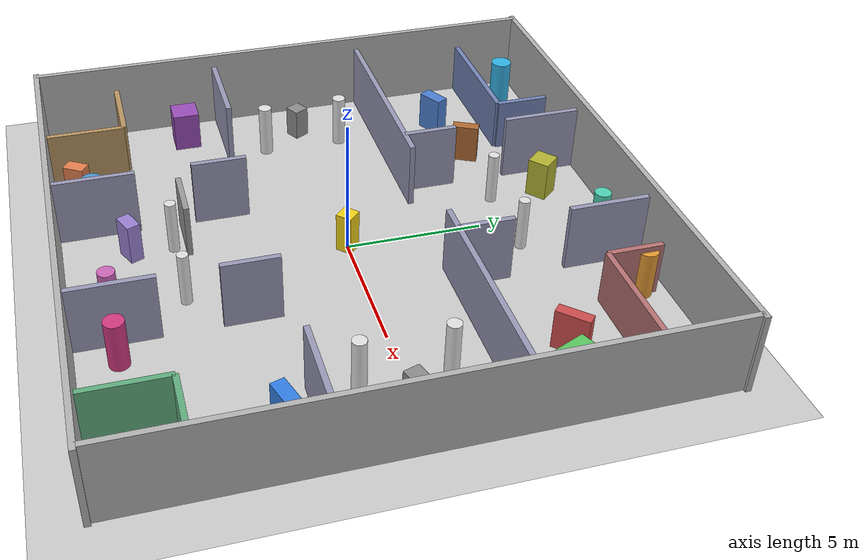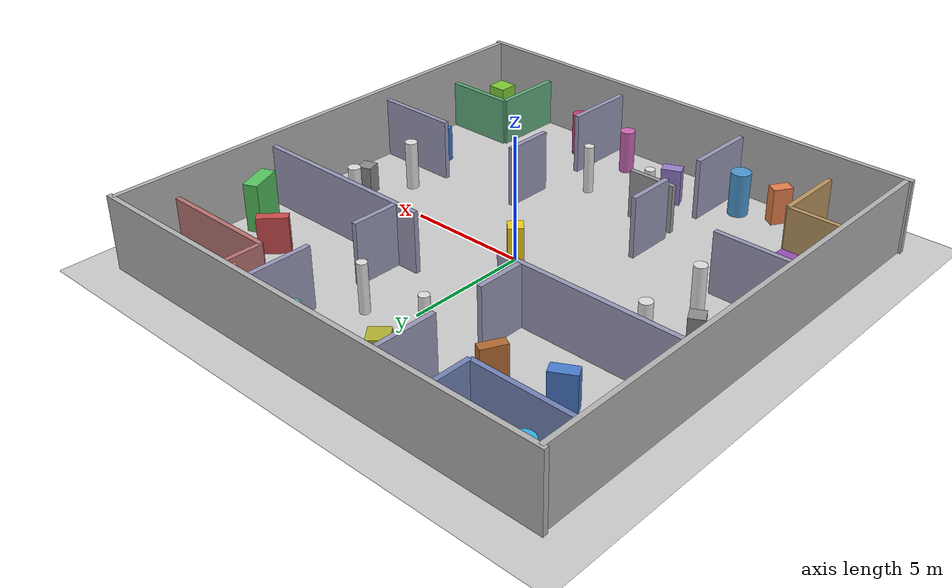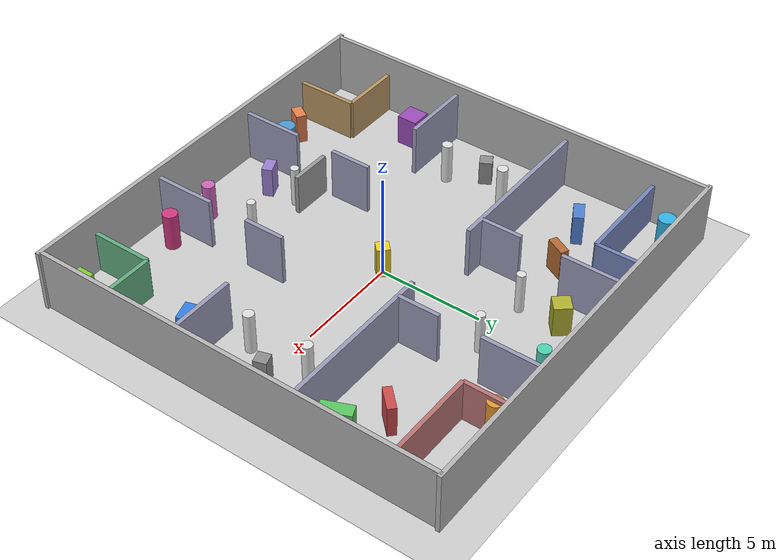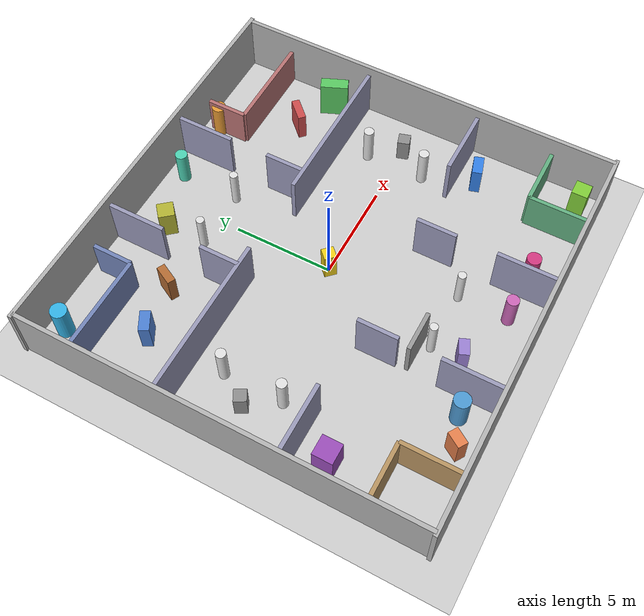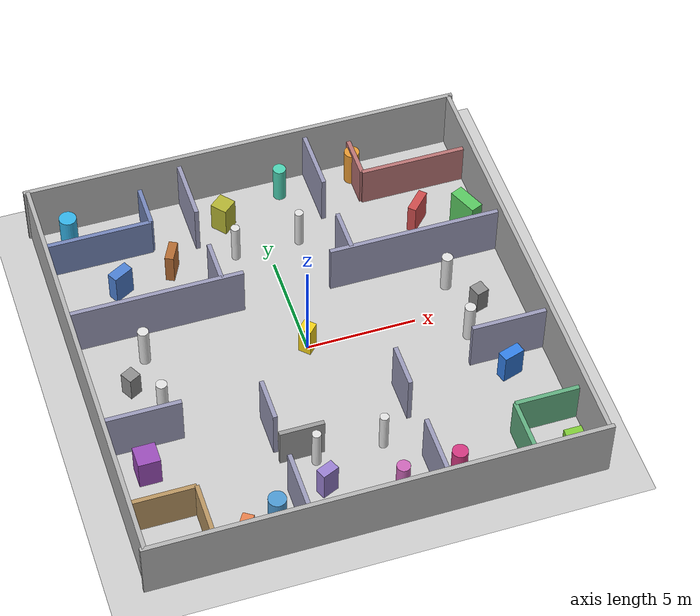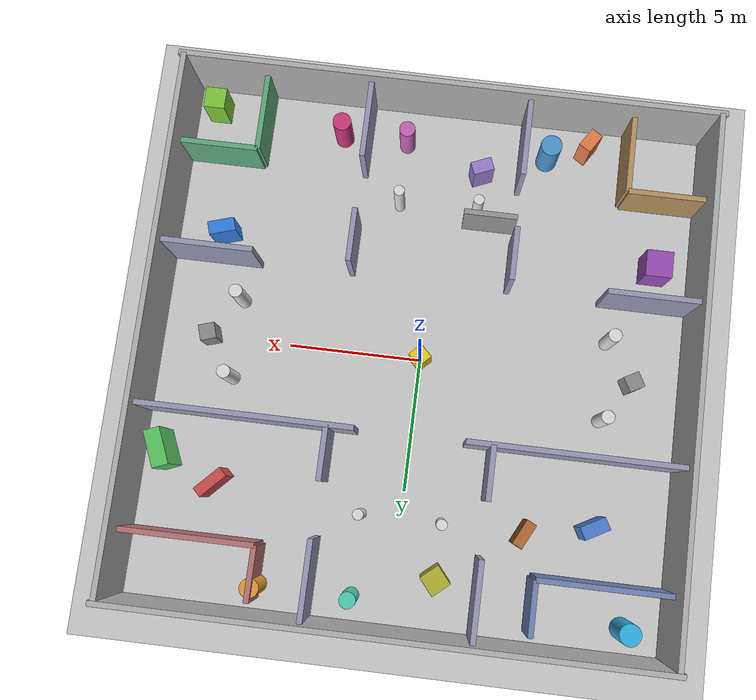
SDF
<?xml version="1.0" ?>
<sdf version="1.8">
  <world name="multi_robot_world">

    <physics name="1ms" type="ignore">
      <max_step_size>0.001</max_step_size>
      <real_time_factor>1.0</real_time_factor>
    </physics>

    <plugin filename="gz-sim-physics-system"          name="gz::sim::systems::Physics"/>
    <plugin filename="gz-sim-user-commands-system"    name="gz::sim::systems::UserCommands"/>
    <plugin filename="gz-sim-scene-broadcaster-system" name="gz::sim::systems::SceneBroadcaster"/>
    <plugin filename="gz-sim-sensors-system"          name="gz::sim::systems::Sensors">
      <render_engine>ogre2</render_engine>
    </plugin>

    <light type="directional" name="sun">
      <cast_shadows>true</cast_shadows>
      <pose>0 0 10 0 0 0</pose>
      <diffuse>0.8 0.8 0.8 1</diffuse>
      <specular>0.2 0.2 0.2 1</specular>
      <attenuation>
        <range>1000</range><constant>0.9</constant>
        <linear>0.01</linear><quadratic>0.001</quadratic>
      </attenuation>
      <direction>-0.5 0.1 -0.9</direction>
    </light>

    <model name="ground_plane">
      <static>true</static>
      <link name="link">
        <collision name="collision">
          <geometry><plane><normal>0 0 1</normal><size>100 100</size></plane></geometry>
        </collision>
        <visual name="visual">
          <geometry><plane><normal>0 0 1</normal><size>100 100</size></plane></geometry>
          <material><ambient>0.8 0.8 0.8 1</ambient><diffuse>0.8 0.8 0.8 1</diffuse></material>
        </visual>
      </link>
    </model>

    <model name="wall_north">
      <pose>0 10 1.5 0 0 0</pose><static>true</static>
      <link name="link">
        <collision name="collision"><geometry><box><size>20.4 0.2 3</size></box></geometry></collision>
        <visual name="visual"><geometry><box><size>20.4 0.2 3</size></box></geometry>
          <material><ambient>0.7 0.7 0.7 1</ambient><diffuse>0.7 0.7 0.7 1</diffuse></material></visual>
      </link>
    </model>
    <model name="wall_south">
      <pose>0 -10 1.5 0 0 0</pose><static>true</static>
      <link name="link">
        <collision name="collision"><geometry><box><size>20.4 0.2 3</size></box></geometry></collision>
        <visual name="visual"><geometry><box><size>20.4 0.2 3</size></box></geometry>
          <material><ambient>0.7 0.7 0.7 1</ambient><diffuse>0.7 0.7 0.7 1</diffuse></material></visual>
      </link>
    </model>
    <model name="wall_east">
      <pose>10 0 1.5 0 0 0</pose><static>true</static>
      <link name="link">
        <collision name="collision"><geometry><box><size>0.2 20 3</size></box></geometry></collision>
        <visual name="visual"><geometry><box><size>0.2 20 3</size></box></geometry>
          <material><ambient>0.7 0.7 0.7 1</ambient><diffuse>0.7 0.7 0.7 1</diffuse></material></visual>
      </link>
    </model>
    <model name="wall_west">
      <pose>-10 0 1.5 0 0 0</pose><static>true</static>
      <link name="link">
        <collision name="collision"><geometry><box><size>0.2 20 3</size></box></geometry></collision>
        <visual name="visual"><geometry><box><size>0.2 20 3</size></box></geometry>
          <material><ambient>0.7 0.7 0.7 1</ambient><diffuse>0.7 0.7 0.7 1</diffuse></material></visual>
      </link>
    </model>

    <model name="wall_h_y3_left">
      <pose>-6 3 1.25 0 0 0</pose><static>true</static>
      <link name="link">
        <collision name="collision"><geometry><box><size>8 0.2 2.5</size></box></geometry></collision>
        <visual name="visual"><geometry><box><size>8 0.2 2.5</size></box></geometry>
          <material><ambient>0.6 0.6 0.72 1</ambient><diffuse>0.6 0.6 0.72 1</diffuse></material></visual>
      </link>
    </model>
    <model name="wall_h_y3_right">
      <pose>6 3 1.25 0 0 0</pose><static>true</static>
      <link name="link">
        <collision name="collision"><geometry><box><size>8 0.2 2.5</size></box></geometry></collision>
        <visual name="visual"><geometry><box><size>8 0.2 2.5</size></box></geometry>
          <material><ambient>0.6 0.6 0.72 1</ambient><diffuse>0.6 0.6 0.72 1</diffuse></material></visual>
      </link>
    </model>

<model name="wall_h_ym3_left">
  <pose>-8.25 -3 1.25 0 0 0</pose><static>true</static>
  <link name="link">
    <collision name="collision"><geometry><box><size>3.5 0.2 2.5</size></box></geometry></collision>
    <visual name="visual"><geometry><box><size>3.5 0.2 2.5</size></box></geometry>
      <material><ambient>0.6 0.6 0.72 1</ambient><diffuse>0.6 0.6 0.72 1</diffuse></material></visual>
  </link>
</model>

<model name="wall_h_ym3_right">
  <pose>8.25 -3 1.25 0 0 0</pose><static>true</static>
  <link name="link">
    <collision name="collision"><geometry><box><size>3.5 0.2 2.5</size></box></geometry></collision>
    <visual name="visual"><geometry><box><size>3.5 0.2 2.5</size></box></geometry>
      <material><ambient>0.6 0.6 0.72 1</ambient><diffuse>0.6 0.6 0.72 1</diffuse></material></visual>
  </link>
</model>

    <model name="wall_v_xm3_n_stub_s">
      <pose>-3 4 1.25 0 0 0</pose><static>true</static>
      <link name="link">
        <collision name="collision"><geometry><box><size>0.2 2 2.5</size></box></geometry></collision>
        <visual name="visual"><geometry><box><size>0.2 2 2.5</size></box></geometry>
          <material><ambient>0.6 0.6 0.72 1</ambient><diffuse>0.6 0.6 0.72 1</diffuse></material></visual>
      </link>
    </model>
    <model name="wall_v_xm3_n_stub_n">
      <pose>-3 8.5 1.25 0 0 0</pose><static>true</static>
      <link name="link">
        <collision name="collision"><geometry><box><size>0.2 3 2.5</size></box></geometry></collision>
        <visual name="visual"><geometry><box><size>0.2 3 2.5</size></box></geometry>
          <material><ambient>0.6 0.6 0.72 1</ambient><diffuse>0.6 0.6 0.72 1</diffuse></material></visual>
      </link>
    </model>
    <model name="wall_v_x3_n_stub_s">
      <pose>3 4 1.25 0 0 0</pose><static>true</static>
      <link name="link">
        <collision name="collision"><geometry><box><size>0.2 2 2.5</size></box></geometry></collision>
        <visual name="visual"><geometry><box><size>0.2 2 2.5</size></box></geometry>
          <material><ambient>0.6 0.6 0.72 1</ambient><diffuse>0.6 0.6 0.72 1</diffuse></material></visual>
      </link>
    </model>
    <model name="wall_v_x3_n_stub_n">
      <pose>3 8.5 1.25 0 0 0</pose><static>true</static>
      <link name="link">
        <collision name="collision"><geometry><box><size>0.2 3 2.5</size></box></geometry></collision>
        <visual name="visual"><geometry><box><size>0.2 3 2.5</size></box></geometry>
          <material><ambient>0.6 0.6 0.72 1</ambient><diffuse>0.6 0.6 0.72 1</diffuse></material></visual>
      </link>
    </model>
    <model name="wall_v_xm3_s_stub_s">
      <pose>-3 -8.5 1.25 0 0 0</pose><static>true</static>
      <link name="link">
        <collision name="collision"><geometry><box><size>0.2 3 2.5</size></box></geometry></collision>
        <visual name="visual"><geometry><box><size>0.2 3 2.5</size></box></geometry>
          <material><ambient>0.6 0.6 0.72 1</ambient><diffuse>0.6 0.6 0.72 1</diffuse></material></visual>
      </link>
    </model>
    <model name="wall_v_xm3_s_stub_n">
      <pose>-3 -4 1.25 0 0 0</pose><static>true</static>
      <link name="link">
        <collision name="collision"><geometry><box><size>0.2 2 2.5</size></box></geometry></collision>
        <visual name="visual"><geometry><box><size>0.2 2 2.5</size></box></geometry>
          <material><ambient>0.6 0.6 0.72 1</ambient><diffuse>0.6 0.6 0.72 1</diffuse></material></visual>
      </link>
    </model>
    <model name="wall_v_x3_s_stub_s">
      <pose>3 -8.5 1.25 0 0 0</pose><static>true</static>
      <link name="link">
        <collision name="collision"><geometry><box><size>0.2 3 2.5</size></box></geometry></collision>
        <visual name="visual"><geometry><box><size>0.2 3 2.5</size></box></geometry>
          <material><ambient>0.6 0.6 0.72 1</ambient><diffuse>0.6 0.6 0.72 1</diffuse></material></visual>
      </link>
    </model>
    <model name="wall_v_x3_s_stub_n">
      <pose>3 -4 1.25 0 0 0</pose><static>true</static>
      <link name="link">
        <collision name="collision"><geometry><box><size>0.2 2 2.5</size></box></geometry></collision>
        <visual name="visual"><geometry><box><size>0.2 2 2.5</size></box></geometry>
          <material><ambient>0.6 0.6 0.72 1</ambient><diffuse>0.6 0.6 0.72 1</diffuse></material></visual>
      </link>
    </model>

    <model name="wall_nw_alcove_h">
      <pose>-7.5 7.5 1.0 0 0 0</pose><static>true</static>
      <link name="link">
        <collision name="collision"><geometry><box><size>5 0.2 2.0</size></box></geometry></collision>
        <visual name="visual"><geometry><box><size>5 0.2 2.0</size></box></geometry>
          <material><ambient>0.45 0.52 0.72 1</ambient><diffuse>0.45 0.52 0.72 1</diffuse></material></visual>
      </link>
    </model>
    <model name="wall_nw_alcove_v">
      <pose>-5 8.5 1.0 0 0 0</pose><static>true</static>
      <link name="link">
        <collision name="collision"><geometry><box><size>0.2 2.0 2.0</size></box></geometry></collision>
        <visual name="visual"><geometry><box><size>0.2 2.0 2.0</size></box></geometry>
          <material><ambient>0.45 0.52 0.72 1</ambient><diffuse>0.45 0.52 0.72 1</diffuse></material></visual>
      </link>
    </model>
    <model name="wall_ne_alcove_h">
      <pose>7.5 7.5 1.0 0 0 0</pose><static>true</static>
      <link name="link">
        <collision name="collision"><geometry><box><size>5 0.2 2.0</size></box></geometry></collision>
        <visual name="visual"><geometry><box><size>5 0.2 2.0</size></box></geometry>
          <material><ambient>0.72 0.45 0.45 1</ambient><diffuse>0.72 0.45 0.45 1</diffuse></material></visual>
      </link>
    </model>
    <model name="wall_ne_alcove_v">
      <pose>5 8.5 1.0 0 0 0</pose><static>true</static>
      <link name="link">
        <collision name="collision"><geometry><box><size>0.2 2.0 2.0</size></box></geometry></collision>
        <visual name="visual"><geometry><box><size>0.2 2.0 2.0</size></box></geometry>
          <material><ambient>0.72 0.45 0.45 1</ambient><diffuse>0.72 0.45 0.45 1</diffuse></material></visual>
      </link>
    </model>
    <model name="wall_sw_niche_v">
      <pose>-7 -8.5 1.0 0 0 0</pose><static>true</static>
      <link name="link">
        <collision name="collision"><geometry><box><size>0.2 3.0 2.0</size></box></geometry></collision>
        <visual name="visual"><geometry><box><size>0.2 3.0 2.0</size></box></geometry>
          <material><ambient>0.72 0.58 0.38 1</ambient><diffuse>0.72 0.58 0.38 1</diffuse></material></visual>
      </link>
    </model>
    <model name="wall_sw_niche_h">
      <pose>-8.5 -7 1.0 0 0 0</pose><static>true</static>
      <link name="link">
        <collision name="collision"><geometry><box><size>3.0 0.2 2.0</size></box></geometry></collision>
        <visual name="visual"><geometry><box><size>3.0 0.2 2.0</size></box></geometry>
          <material><ambient>0.72 0.58 0.38 1</ambient><diffuse>0.72 0.58 0.38 1</diffuse></material></visual>
      </link>
    </model>
    <model name="wall_se_niche_v">
      <pose>7 -8.5 1.0 0 0 0</pose><static>true</static>
      <link name="link">
        <collision name="collision"><geometry><box><size>0.2 3.0 2.0</size></box></geometry></collision>
        <visual name="visual"><geometry><box><size>0.2 3.0 2.0</size></box></geometry>
          <material><ambient>0.38 0.68 0.50 1</ambient><diffuse>0.38 0.68 0.50 1</diffuse></material></visual>
      </link>
    </model>
    <model name="wall_se_niche_h">
      <pose>8.5 -7 1.0 0 0 0</pose><static>true</static>
      <link name="link">
        <collision name="collision"><geometry><box><size>3.0 0.2 2.0</size></box></geometry></collision>
        <visual name="visual"><geometry><box><size>3.0 0.2 2.0</size></box></geometry>
          <material><ambient>0.38 0.68 0.50 1</ambient><diffuse>0.38 0.68 0.50 1</diffuse></material></visual>
      </link>
    </model>
    <model name="wall_sc_niche">
      <pose>-2 -5.5 1.0 0 0 0</pose><static>true</static>
      <link name="link">
        <collision name="collision"><geometry><box><size>2.0 0.2 2.0</size></box></geometry></collision>
        <visual name="visual"><geometry><box><size>2.0 0.2 2.0</size></box></geometry>
          <material><ambient>0.6 0.6 0.6 1</ambient><diffuse>0.6 0.6 0.6 1</diffuse></material></visual>
      </link>
    </model>

    <model name="pillar_w_north">
      <pose>-7 1.5 1.0 0 0 0</pose><static>true</static>
      <link name="link">
        <collision name="collision"><geometry><cylinder><radius>0.25</radius><length>2.0</length></cylinder></geometry></collision>
        <visual name="visual"><geometry><cylinder><radius>0.25</radius><length>2.0</length></cylinder></geometry>
          <material><ambient>0.88 0.88 0.88 1</ambient><diffuse>0.88 0.88 0.88 1</diffuse></material></visual>
      </link>
    </model>
    <model name="pillar_w_south">
      <pose>-7 -1.5 1.0 0 0 0</pose><static>true</static>
      <link name="link">
        <collision name="collision"><geometry><cylinder><radius>0.25</radius><length>2.0</length></cylinder></geometry></collision>
        <visual name="visual"><geometry><cylinder><radius>0.25</radius><length>2.0</length></cylinder></geometry>
          <material><ambient>0.88 0.88 0.88 1</ambient><diffuse>0.88 0.88 0.88 1</diffuse></material></visual>
      </link>
    </model>
    <model name="pillar_e_north">
      <pose>7 1.5 1.0 0 0 0</pose><static>true</static>
      <link name="link">
        <collision name="collision"><geometry><cylinder><radius>0.25</radius><length>2.0</length></cylinder></geometry></collision>
        <visual name="visual"><geometry><cylinder><radius>0.25</radius><length>2.0</length></cylinder></geometry>
          <material><ambient>0.88 0.88 0.88 1</ambient><diffuse>0.88 0.88 0.88 1</diffuse></material></visual>
      </link>
    </model>
    <model name="pillar_e_south">
      <pose>7 -1.5 1.0 0 0 0</pose><static>true</static>
      <link name="link">
        <collision name="collision"><geometry><cylinder><radius>0.25</radius><length>2.0</length></cylinder></geometry></collision>
        <visual name="visual"><geometry><cylinder><radius>0.25</radius><length>2.0</length></cylinder></geometry>
          <material><ambient>0.88 0.88 0.88 1</ambient><diffuse>0.88 0.88 0.88 1</diffuse></material></visual>
      </link>
    </model>
    <model name="pillar_sc_west">
      <pose>-1.5 -6 1.0 0 0 0</pose><static>true</static>
      <link name="link">
        <collision name="collision"><geometry><cylinder><radius>0.2</radius><length>2.0</length></cylinder></geometry></collision>
        <visual name="visual"><geometry><cylinder><radius>0.2</radius><length>2.0</length></cylinder></geometry>
          <material><ambient>0.88 0.88 0.88 1</ambient><diffuse>0.88 0.88 0.88 1</diffuse></material></visual>
      </link>
    </model>
    <model name="pillar_sc_east">
      <pose>1.5 -6 1.0 0 0 0</pose><static>true</static>
      <link name="link">
        <collision name="collision"><geometry><cylinder><radius>0.2</radius><length>2.0</length></cylinder></geometry></collision>
        <visual name="visual"><geometry><cylinder><radius>0.2</radius><length>2.0</length></cylinder></geometry>
          <material><ambient>0.88 0.88 0.88 1</ambient><diffuse>0.88 0.88 0.88 1</diffuse></material></visual>
      </link>
    </model>
    <model name="pillar_nc_west">
      <pose>-1.5 6 1.0 0 0 0</pose><static>true</static>
      <link name="link">
        <collision name="collision"><geometry><cylinder><radius>0.2</radius><length>2.0</length></cylinder></geometry></collision>
        <visual name="visual"><geometry><cylinder><radius>0.2</radius><length>2.0</length></cylinder></geometry>
          <material><ambient>0.88 0.88 0.88 1</ambient><diffuse>0.88 0.88 0.88 1</diffuse></material></visual>
      </link>
    </model>
    <model name="pillar_nc_east">
      <pose>1.5 6 1.0 0 0 0</pose><static>true</static>
      <link name="link">
        <collision name="collision"><geometry><cylinder><radius>0.2</radius><length>2.0</length></cylinder></geometry></collision>
        <visual name="visual"><geometry><cylinder><radius>0.2</radius><length>2.0</length></cylinder></geometry>
          <material><ambient>0.88 0.88 0.88 1</ambient><diffuse>0.88 0.88 0.88 1</diffuse></material></visual>
      </link>
    </model>

    <model name="feature_junction_center">
      <pose>0 0 0.75 0 0 0.785</pose><static>true</static>
      <link name="link">
        <collision name="collision"><geometry><box><size>0.6 0.6 1.5</size></box></geometry></collision>
        <visual name="visual"><geometry><box><size>0.6 0.6 1.5</size></box></geometry>
          <material><ambient>0.95 0.82 0.1 1</ambient><diffuse>0.95 0.82 0.1 1</diffuse></material></visual>
      </link>
    </model>

    <model name="obs_nw_box1">
      <pose>-7 5.5 0.75 0 0 0.5</pose><static>true</static>
      <link name="link">
        <collision name="collision"><geometry><box><size>1.0 0.5 1.5</size></box></geometry></collision>
        <visual name="visual"><geometry><box><size>1.0 0.5 1.5</size></box></geometry>
          <material><ambient>0.3 0.5 0.82 1</ambient><diffuse>0.3 0.5 0.82 1</diffuse></material></visual>
      </link>
    </model>
    <model name="obs_nw_cyl">
      <pose>-8.5 9 0.9 0 0 0</pose><static>true</static>
      <link name="link">
        <collision name="collision"><geometry><cylinder><radius>0.4</radius><length>1.8</length></cylinder></geometry></collision>
        <visual name="visual"><geometry><cylinder><radius>0.4</radius><length>1.8</length></cylinder></geometry>
          <material><ambient>0.2 0.7 0.9 1</ambient><diffuse>0.2 0.7 0.9 1</diffuse></material></visual>
      </link>
    </model>
    <model name="obs_nw_box2">
      <pose>-4.5 6 0.75 0 0 1.1</pose><static>true</static>
      <link name="link">
        <collision name="collision"><geometry><box><size>1.0 0.4 1.5</size></box></geometry></collision>
        <visual name="visual"><geometry><box><size>1.0 0.4 1.5</size></box></geometry>
          <material><ambient>0.7 0.42 0.2 1</ambient><diffuse>0.7 0.42 0.2 1</diffuse></material></visual>
      </link>
    </model>
    <model name="obs_ne_box1">
      <pose>7 5.5 0.75 0 0 0.8</pose><static>true</static>
      <link name="link">
        <collision name="collision"><geometry><box><size>1.2 0.4 1.5</size></box></geometry></collision>
        <visual name="visual"><geometry><box><size>1.2 0.4 1.5</size></box></geometry>
          <material><ambient>0.8 0.3 0.3 1</ambient><diffuse>0.8 0.3 0.3 1</diffuse></material></visual>
      </link>
    </model>
    <model name="obs_ne_cyl">
      <pose>5 9 0.9 0 0 0</pose><static>true</static>
      <link name="link">
        <collision name="collision"><geometry><cylinder><radius>0.35</radius><length>1.8</length></cylinder></geometry></collision>
        <visual name="visual"><geometry><cylinder><radius>0.35</radius><length>1.8</length></cylinder></geometry>
          <material><ambient>0.9 0.6 0.2 1</ambient><diffuse>0.9 0.6 0.2 1</diffuse></material></visual>
      </link>
    </model>
    <model name="obs_ne_box2">
      <pose>9 4.5 1.0 0 0 0.4</pose><static>true</static>
      <link name="link">
        <collision name="collision"><geometry><box><size>0.6 1.4 2.0</size></box></geometry></collision>
        <visual name="visual"><geometry><box><size>0.6 1.4 2.0</size></box></geometry>
          <material><ambient>0.35 0.78 0.38 1</ambient><diffuse>0.35 0.78 0.38 1</diffuse></material></visual>
      </link>
    </model>
    <model name="obs_sw_box1">
      <pose>-8.5 -4.5 0.75 0 0 0</pose><static>true</static>
      <link name="link">
        <collision name="collision"><geometry><box><size>1.0 1.0 1.5</size></box></geometry></collision>
        <visual name="visual"><geometry><box><size>1.0 1.0 1.5</size></box></geometry>
          <material><ambient>0.6 0.3 0.72 1</ambient><diffuse>0.6 0.3 0.72 1</diffuse></material></visual>
      </link>
    </model>
    <model name="obs_sw_cyl">
      <pose>-4 -8.5 0.9 0 0 0</pose><static>true</static>
      <link name="link">
        <collision name="collision"><geometry><cylinder><radius>0.4</radius><length>1.8</length></cylinder></geometry></collision>
        <visual name="visual"><geometry><cylinder><radius>0.4</radius><length>1.8</length></cylinder></geometry>
          <material><ambient>0.3 0.6 0.82 1</ambient><diffuse>0.3 0.6 0.82 1</diffuse></material></visual>
      </link>
    </model>
    <model name="obs_sw_box2">
      <pose>-5.5 -9 0.75 0 0 1.0</pose><static>true</static>
      <link name="link">
        <collision name="collision"><geometry><box><size>0.8 0.5 1.5</size></box></geometry></collision>
        <visual name="visual"><geometry><box><size>0.8 0.5 1.5</size></box></geometry>
          <material><ambient>0.9 0.5 0.3 1</ambient><diffuse>0.9 0.5 0.3 1</diffuse></material></visual>
      </link>
    </model>
    <model name="obs_se_box1">
      <pose>8 -4.0 0.75 0 0 0.3</pose><static>true</static>
      <link name="link">
        <collision name="collision"><geometry><box><size>1.0 0.5 1.5</size></box></geometry></collision>
        <visual name="visual"><geometry><box><size>1.0 0.5 1.5</size></box></geometry>
          <material><ambient>0.2 0.5 0.9 1</ambient><diffuse>0.2 0.5 0.9 1</diffuse></material></visual>
      </link>
    </model>
    <model name="obs_se_cyl">
      <pose>4 -8.5 0.9 0 0 0</pose><static>true</static>
      <link name="link">
        <collision name="collision"><geometry><cylinder><radius>0.35</radius><length>1.8</length></cylinder></geometry></collision>
        <visual name="visual"><geometry><cylinder><radius>0.35</radius><length>1.8</length></cylinder></geometry>
          <material><ambient>0.82 0.22 0.5 1</ambient><diffuse>0.82 0.22 0.5 1</diffuse></material></visual>
      </link>
    </model>
    <model name="obs_se_box2">
      <pose>9 -9 0.75 0 0 0</pose><static>true</static>
      <link name="link">
        <collision name="collision"><geometry><box><size>0.8 0.8 1.5</size></box></geometry></collision>
        <visual name="visual"><geometry><box><size>0.8 0.8 1.5</size></box></geometry>
          <material><ambient>0.5 0.8 0.22 1</ambient><diffuse>0.5 0.8 0.22 1</diffuse></material></visual>
      </link>
    </model>
    <model name="obs_nc_box">
      <pose>-1.5 8.0 0.75 0 0 0.7</pose><static>true</static>
      <link name="link">
        <collision name="collision"><geometry><box><size>0.8 0.8 1.5</size></box></geometry></collision>
        <visual name="visual"><geometry><box><size>0.8 0.8 1.5</size></box></geometry>
          <material><ambient>0.7 0.7 0.2 1</ambient><diffuse>0.7 0.7 0.2 1</diffuse></material></visual>
      </link>
    </model>
    <model name="obs_nc_cyl">
      <pose>1.5 9.0 0.9 0 0 0</pose><static>true</static>
      <link name="link">
        <collision name="collision"><geometry><cylinder><radius>0.3</radius><length>1.8</length></cylinder></geometry></collision>
        <visual name="visual"><geometry><cylinder><radius>0.3</radius><length>1.8</length></cylinder></geometry>
          <material><ambient>0.3 0.82 0.7 1</ambient><diffuse>0.3 0.82 0.7 1</diffuse></material></visual>
      </link>
    </model>
    <model name="obs_sc_box">
      <pose>-1.5 -7.5 0.75 0 0 0.4</pose><static>true</static>
      <link name="link">
        <collision name="collision"><geometry><box><size>0.8 0.5 1.5</size></box></geometry></collision>
        <visual name="visual"><geometry><box><size>0.8 0.5 1.5</size></box></geometry>
          <material><ambient>0.6 0.5 0.82 1</ambient><diffuse>0.6 0.5 0.82 1</diffuse></material></visual>
      </link>
    </model>
    <model name="obs_sc_cyl">
      <pose>1.5 -8.5 0.9 0 0 0</pose><static>true</static>
      <link name="link">
        <collision name="collision"><geometry><cylinder><radius>0.3</radius><length>1.8</length></cylinder></geometry></collision>
        <visual name="visual"><geometry><cylinder><radius>0.3</radius><length>1.8</length></cylinder></geometry>
          <material><ambient>0.8 0.4 0.72 1</ambient><diffuse>0.8 0.4 0.72 1</diffuse></material></visual>
      </link>
    </model>
    <model name="obs_w_arm">
      <pose>-8 0 0.6 0 0 0.5</pose><static>true</static>
      <link name="link">
        <collision name="collision"><geometry><box><size>0.6 0.6 1.2</size></box></geometry></collision>
        <visual name="visual"><geometry><box><size>0.6 0.6 1.2</size></box></geometry>
          <material><ambient>0.55 0.55 0.55 1</ambient><diffuse>0.55 0.55 0.55 1</diffuse></material></visual>
      </link>
    </model>
    <model name="obs_e_arm">
      <pose>8 0 0.6 0 0 0.3</pose><static>true</static>
      <link name="link">
        <collision name="collision"><geometry><box><size>0.6 0.6 1.2</size></box></geometry></collision>
        <visual name="visual"><geometry><box><size>0.6 0.6 1.2</size></box></geometry>
          <material><ambient>0.55 0.55 0.55 1</ambient><diffuse>0.55 0.55 0.55 1</diffuse></material></visual>
      </link>
    </model>

  </world>
</sdf>
